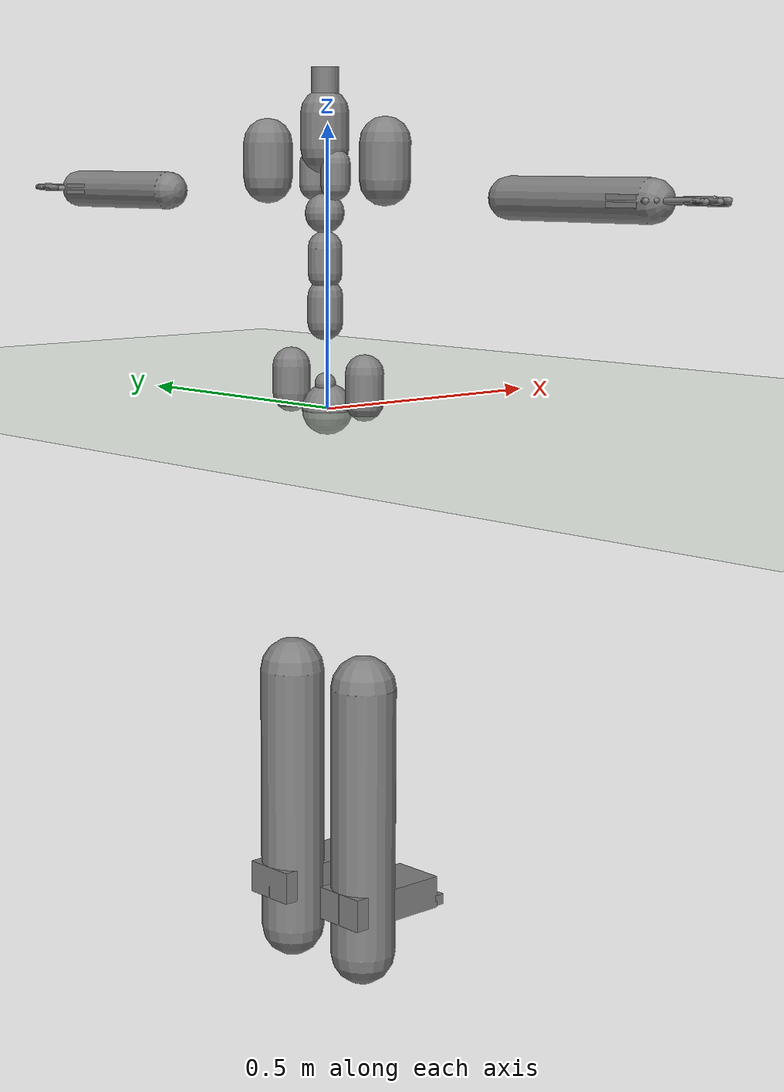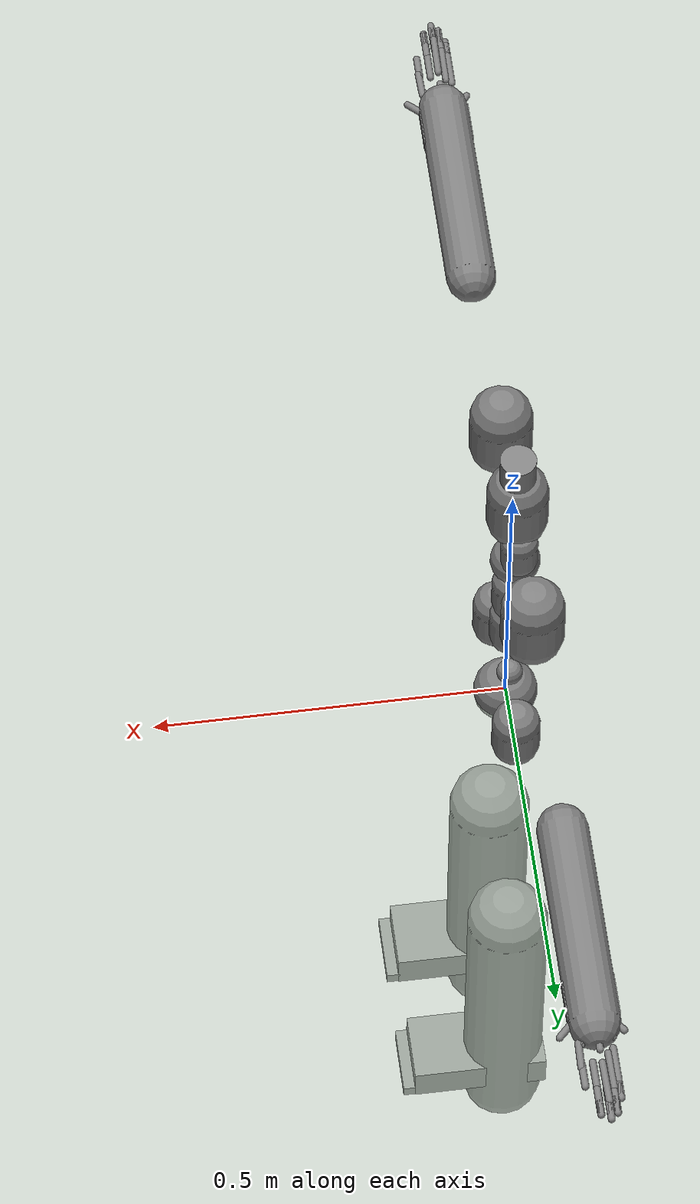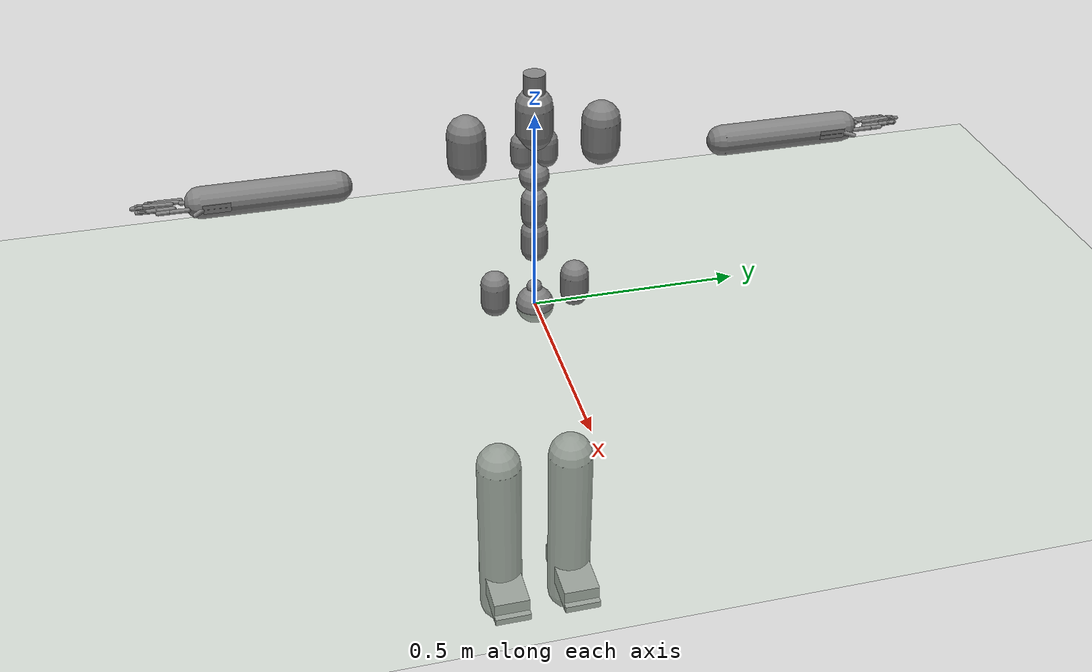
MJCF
<?xml version="1.0" ?>
<mujoco model="humanoid">
  <compiler coordinate="local"/>
  <statistic extent="2" center="0 0 1"/>
  <option timestep="0.00555"/>
  <default>
    <motor ctrlrange="-1 1" ctrllimited="true"/>
    <geom type="capsule" condim="1" friction="1.0 0.05 0.05" solimp=".9 .99 .003" solref=".015 1"/>
    <joint type="hinge" damping="0.1" stiffness="5" armature=".007" limited="true" solimplimit="0 .99 .01"/>
    <site size=".04" group="3"/>
  </default>
  <asset>
    <texture type="skybox" builtin="gradient" rgb1=".4 .5 .6" rgb2="0 0 0" width="100" height="100"/>
    <texture builtin="flat" height="1278" mark="cross" markrgb="1 1 1" name="texgeom" random="0.01" rgb1="0.8 0.6 0.4" rgb2="0.8 0.6 0.4" type="cube" width="127"/>
    <texture builtin="checker" height="100" name="texplane" rgb1="0 0 0" rgb2="0.8 0.8 0.8" type="2d" width="100"/>
    <material name="MatPlane" reflectance="0.5" shininess="1" specular="1" texrepeat="60 60" texture="texplane"/>
    <material name="geom" texture="texgeom" texuniform="true"/>
  </asset>
  <worldbody>
    <light cutoff="100" diffuse="1 1 1" dir="-0 0 -1.3" directional="true" exponent="1" pos="0 0 1.3" specular=".1 .1 .1"/>
    <geom conaffinity="1" condim="3" name="floor" pos="0 0 0" rgba="0.8 0.9 0.8 1" size="100 100 .2" type="plane" material="MatPlane"/>
    <body name="pHipOrigin" pos="0 0 0">
      <freejoint name="pHipOrigin"/>
      <geom type="sphere" contype="1" conaffinity="1" density="4629.6296296296305" size="0.04579" pos="0.0000 0.0000 -0.0000"/>
      <body name="jL5S1" pos="-0.00516028 0 0.04644237">
        <geom type="sphere" contype="1" conaffinity="1" density="1000" size="0.01869" pos="0 0 0"/>
        <joint name="jL5S1_x" type="hinge" pos="0 0 0" axis="1 0 0" stiffness="500" damping="500" armature="0.02" range="-180.0000 180.0000"/>
        <joint name="jL5S1_y" type="hinge" pos="0 0 0" axis="0 1 0" stiffness="500" damping="500" armature="0.02" range="-180.0000 180.0000"/>
        <joint name="jL5S1_z" type="hinge" pos="0 0 0" axis="0 0 1" stiffness="500" damping="500" armature="0.02" range="-180.0000 180.0000"/>
        <body name="jL4L3" pos="0 0 0.09026365">
          <geom type="capsule" contype="1" conaffinity="1" density="1000" fromto="0 0 0.01805 0 0 0.06318" size="0.03159"/>
          <joint name="jL4L3_x" type="hinge" pos="0 0 0" axis="1 0 0" stiffness="500" damping="500" armature="0.02" range="-180.0000 180.0000"/>
          <joint name="jL4L3_y" type="hinge" pos="0 0 0" axis="0 1 0" stiffness="500" damping="500" armature="0.02" range="-180.0000 180.0000"/>
          <joint name="jL4L3_z" type="hinge" pos="0 0 0" axis="0 0 1" stiffness="500" damping="500" armature="0.02" range="-180.0000 180.0000"/>
          <body name="jL1T12" pos="-0.00067339 0 0.08728387">
            <geom type="capsule" contype="1" conaffinity="1" density="1000" fromto="0 0 0.01746 0 0 0.06110" size="0.03055"/>
            <joint name="jL1T12_x" type="hinge" pos="0 0 0" axis="1 0 0" stiffness="500" damping="500" armature="0.02" range="-180.0000 180.0000"/>
            <joint name="jL1T12_y" type="hinge" pos="0 0 0" axis="0 1 0" stiffness="500" damping="500" armature="0.02" range="-180.0000 180.0000"/>
            <joint name="jL1T12_z" type="hinge" pos="0 0 0" axis="0 0 1" stiffness="500" damping="500" armature="0.02" range="-180.0000 180.0000"/>
            <body name="jT9T8" pos="-0.00067503 0 0.08732632">
              <geom type="sphere" contype="1" conaffinity="1" density="1000" size="0.03493" pos="0.000 0.0000 0.034932"/>
              <joint name="jT9T8_x" type="hinge" pos="0 0 0" axis="1 0 0" stiffness="500" damping="500" armature="0.02" range="-180.0000 180.0000"/>
              <joint name="jT9T8_y" type="hinge" pos="0 0 0" axis="0 1 0" stiffness="500" damping="500" armature="0.02" range="-180.0000 180.0000"/>
              <joint name="jT9T8_z" type="hinge" pos="0 0 0" axis="0 0 1" stiffness="500" damping="500" armature="0.02" range="-180.0000 180.0000"/>
              <body name="jT1C7" pos="0 0 0.12202999">
                <geom type="capsule" contype="1" conaffinity="1" density="1000" fromto="0 0 0.02441 0 0 0.08542" size="0.04271"/>
                <joint name="jT1C7_x" type="hinge" pos="0 0 0" axis="1 0 0" stiffness="500" damping="500" armature="0.02" range="-180.0000 180.0000"/>
                <joint name="jT1C7_y" type="hinge" pos="0 0 0" axis="0 1 0" stiffness="500" damping="500" armature="0.02" range="-180.0000 180.0000"/>
                <joint name="jT1C7_z" type="hinge" pos="0 0 0" axis="0 0 1" stiffness="500" damping="500" armature="0.02" range="-180.0000 180.0000"/>
                <body name="jC1Head" pos="0.00096976 0 0.08219932">
                  <geom type="cylinder" contype="1" conaffinity="1" density="1000" fromto="0 0 0 0 0 0.08221" size="0.02466"/>
                  <joint name="jC1Head_x" type="hinge" pos="0 0 0" axis="1 0 0" stiffness="500" damping="500" armature="0.02" range="-180.0000 180.0000"/>
                  <joint name="jC1Head_y" type="hinge" pos="0 0 0" axis="0 1 0" stiffness="500" damping="500" armature="0.02" range="-180.0000 180.0000"/>
                  <joint name="jC1Head_z" type="hinge" pos="0 0 0" axis="0 0 1" stiffness="500" damping="500" armature="0.02" range="-180.0000 180.0000"/>
                </body>
              </body>
              <body name="jRightT4Shoulder" pos="0 -0.02818148 0.06871263">
                <geom type="capsule" contype="1" conaffinity="1" density="1000" fromto="0 0 0.01485 0 0 0.05199" size="0.02599"/>
                <joint name="jRightT4Shoulder_x" type="hinge" pos="0 0 0" axis="1 0 0" stiffness="500" damping="500" armature="0.02" range="-180.0000 180.0000"/>
                <joint name="jRightT4Shoulder_y" type="hinge" pos="0 0 0" axis="0 1 0" stiffness="500" damping="500" armature="0.02" range="-180.0000 180.0000"/>
                <joint name="jRightT4Shoulder_z" type="hinge" pos="0 0 0" axis="0 0 1" stiffness="500" damping="500" armature="0.02" range="-180.0000 180.0000"/>
                <body name="jRightShoulder" pos="0 -0.12632993 0">
                  <geom type="capsule" contype="1" conaffinity="1" density="1000" fromto="0 0 0.02527 0 0 0.08843" size="0.04422"/>
                  <joint name="jRightShoulder_x" type="hinge" pos="0 0 0" axis="1 0 0" stiffness="500" damping="500" armature="0.02" range="-180.0000 180.0000"/>
                  <joint name="jRightShoulder_y" type="hinge" pos="0 0 0" axis="0 1 0" stiffness="500" damping="500" armature="0.02" range="-180.0000 180.0000"/>
                  <joint name="jRightShoulder_z" type="hinge" pos="0 0 0" axis="0 0 1" stiffness="500" damping="500" armature="0.02" range="-180.0000 180.0000"/>
                  <body name="jRightElbow" pos="0 -0.29293466 0">
                    <geom type="capsule" contype="1" conaffinity="1" density="1000" fromto="0 0 0 0.00000000 -0.29293466 0.00000000" size="0.03515"/>
                    <joint name="jRightElbow_x" type="hinge" pos="0 0 0" axis="1 0 0" stiffness="500" damping="500" armature="0.02" range="-180.0000 180.0000"/>
                    <joint name="jRightElbow_y" type="hinge" pos="0 0 0" axis="0 1 0" stiffness="500" damping="500" armature="0.02" range="-180.0000 180.0000"/>
                    <joint name="jRightElbow_z" type="hinge" pos="0 0 0" axis="0 0 1" stiffness="500" damping="500" armature="0.02" range="-180.0000 180.0000"/>
                    <body name="jRightWrist" pos="0.00010481 -0.26040477 0">
                      <geom density="1000" type="box" pos="0 0 0" size="0.035 0.03 0.01" quat="1.0000 0.0000 0.0000 0.0000"/>
                      <joint name="jRightWrist_x" type="hinge" pos="0 0 0" axis="1 0 0" stiffness="500" damping="500" armature="0.02" range="-180.0000 180.0000"/>
                      <joint name="jRightWrist_y" type="hinge" pos="0 0 0" axis="0 1 0" stiffness="500" damping="500" armature="0.02" range="-180.0000 180.0000"/>
                      <joint name="jRightWrist_z" type="hinge" pos="0 0 0" axis="0 0 1" stiffness="500" damping="500" armature="0.02" range="-180.0000 180.0000"/>
                      <body name="jRightFirstCMC" pos="0.02457672 -0.02355817 -0.00111298">
                        <geom type="capsule" contype="1" conaffinity="1" density="1000" fromto="0 0 0 0.02457672 -0.02355817 -0.00111298" size="0.005"/>
                        <joint name="jRightFirstCMC_x" type="hinge" pos="0 0 0" axis="1 0 0" stiffness="500" damping="500" armature="0.02" range="-180.0000 180.0000"/>
                        <joint name="jRightFirstCMC_y" type="hinge" pos="0 0 0" axis="0 1 0" stiffness="500" damping="500" armature="0.02" range="-180.0000 180.0000"/>
                        <joint name="jRightFirstCMC_z" type="hinge" pos="0 0 0" axis="0 0 1" stiffness="500" damping="500" armature="0.02" range="-180.0000 180.0000"/>
                        <body name="jRightFirstMCP" pos="0.00128810 -0.03634932 0.00076806">
                          <geom type="capsule" contype="1" conaffinity="1" density="1000" fromto="0 0 0 0.00128810 -0.03634932 0.00076806" size="0.005"/>
                          <joint name="jRightFirstMCP_x" type="hinge" pos="0 0 0" axis="1 0 0" stiffness="500" damping="500" armature="0.02" range="-180.0000 180.0000"/>
                          <joint name="jRightFirstMCP_y" type="hinge" pos="0 0 0" axis="0 1 0" stiffness="500" damping="500" armature="0.02" range="-180.0000 180.0000"/>
                          <joint name="jRightFirstMCP_z" type="hinge" pos="0 0 0" axis="0 0 1" stiffness="500" damping="500" armature="0.02" range="-180.0000 180.0000"/>
                          <body name="jRightIP" pos="0 -0.03195991 0">
                            <geom type="capsule" contype="1" conaffinity="1" density="1000" fromto="0 0 0 0.00000000 -0.03195991 0.00000000" size="0.005"/>
                            <joint name="jRightIP_x" type="hinge" pos="0 0 0" axis="1 0 0" stiffness="500" damping="500" armature="0.02" range="-180.0000 180.0000"/>
                            <joint name="jRightIP_y" type="hinge" pos="0 0 0" axis="0 1 0" stiffness="500" damping="500" armature="0.02" range="-180.0000 180.0000"/>
                            <joint name="jRightIP_z" type="hinge" pos="0 0 0" axis="0 0 1" stiffness="500" damping="500" armature="0.02" range="-180.0000 180.0000"/>
                          </body>
                        </body>
                      </body>
                      <body name="jRightSecondCMC" pos="0.01080197 -0.03155993 -0.00055048">
                        <geom type="capsule" contype="1" conaffinity="1" density="1000" fromto="0 0 0 0.01080197 -0.03155993 -0.00055048" size="0.005"/>
                        <joint name="jRightSecondCMC_x" type="hinge" pos="0 0 0" axis="1 0 0" stiffness="500" damping="500" armature="0.02" range="-180.0000 180.0000"/>
                        <joint name="jRightSecondCMC_y" type="hinge" pos="0 0 0" axis="0 1 0" stiffness="500" damping="500" armature="0.02" range="-180.0000 180.0000"/>
                        <joint name="jRightSecondCMC_z" type="hinge" pos="0 0 0" axis="0 0 1" stiffness="500" damping="500" armature="0.02" range="-180.0000 180.0000"/>
                        <body name="jRightSecondMCP" pos="-0.00036524 -0.05825237 -0.00060427">
                          <geom type="capsule" contype="1" conaffinity="1" density="1000" fromto="0 0 0 -0.00036524 -0.05825237 -0.00060427" size="0.005"/>
                          <joint name="jRightSecondMCP_x" type="hinge" pos="0 0 0" axis="1 0 0" stiffness="500" damping="500" armature="0.02" range="-180.0000 180.0000"/>
                          <joint name="jRightSecondMCP_y" type="hinge" pos="0 0 0" axis="0 1 0" stiffness="500" damping="500" armature="0.02" range="-180.0000 180.0000"/>
                          <joint name="jRightSecondMCP_z" type="hinge" pos="0 0 0" axis="0 0 1" stiffness="500" damping="500" armature="0.02" range="-180.0000 180.0000"/>
                          <body name="jRightSecondPIP" pos="0 -0.03853309 0">
                            <geom type="capsule" contype="1" conaffinity="1" density="1000" fromto="0 0 0 0.00000000 -0.03853309 0.00000000" size="0.005"/>
                            <joint name="jRightSecondPIP_x" type="hinge" pos="0 0 0" axis="1 0 0" stiffness="500" damping="500" armature="0.02" range="-180.0000 180.0000"/>
                            <joint name="jRightSecondPIP_y" type="hinge" pos="0 0 0" axis="0 1 0" stiffness="500" damping="500" armature="0.02" range="-180.0000 180.0000"/>
                            <joint name="jRightSecondPIP_z" type="hinge" pos="0 0 0" axis="0 0 1" stiffness="500" damping="500" armature="0.02" range="-180.0000 180.0000"/>
                            <body name="jRightSecondDIP" pos="0 -0.01883598 0">
                              <geom type="capsule" contype="1" conaffinity="1" density="1000" fromto="0 0 0 0.00000000 -0.01883598 0.00000000" size="0.005"/>
                              <joint name="jRightSecondDIP_x" type="hinge" pos="0 0 0" axis="1 0 0" stiffness="500" damping="500" armature="0.02" range="-180.0000 180.0000"/>
                              <joint name="jRightSecondDIP_y" type="hinge" pos="0 0 0" axis="0 1 0" stiffness="500" damping="500" armature="0.02" range="-180.0000 180.0000"/>
                              <joint name="jRightSecondDIP_z" type="hinge" pos="0 0 0" axis="0 0 1" stiffness="500" damping="500" armature="0.02" range="-180.0000 180.0000"/>
                            </body>
                          </body>
                        </body>
                      </body>
                      <body name="jRightThirdCMC" pos="-0.00068696 -0.03714905 0.00156180">
                        <geom type="capsule" contype="1" conaffinity="1" density="1000" fromto="0 0 0 -0.00068696 -0.03714905 0.00156180" size="0.005"/>
                        <joint name="jRightThirdCMC_x" type="hinge" pos="0 0 0" axis="1 0 0" stiffness="500" damping="500" armature="0.02" range="-180.0000 180.0000"/>
                        <joint name="jRightThirdCMC_y" type="hinge" pos="0 0 0" axis="0 1 0" stiffness="500" damping="500" armature="0.02" range="-180.0000 180.0000"/>
                        <joint name="jRightThirdCMC_z" type="hinge" pos="0 0 0" axis="0 0 1" stiffness="500" damping="500" armature="0.02" range="-180.0000 180.0000"/>
                        <body name="jRightThirdMCP" pos="-0.00068819 -0.05701641 0.00155120">
                          <geom type="capsule" contype="1" conaffinity="1" density="1000" fromto="0 0 0 -0.00068819 -0.05701641 0.00155120" size="0.005"/>
                          <joint name="jRightThirdMCP_x" type="hinge" pos="0 0 0" axis="1 0 0" stiffness="500" damping="500" armature="0.02" range="-180.0000 180.0000"/>
                          <joint name="jRightThirdMCP_y" type="hinge" pos="0 0 0" axis="0 1 0" stiffness="500" damping="500" armature="0.02" range="-180.0000 180.0000"/>
                          <joint name="jRightThirdMCP_z" type="hinge" pos="0 0 0" axis="0 0 1" stiffness="500" damping="500" armature="0.02" range="-180.0000 180.0000"/>
                          <body name="jRightThirdPIP" pos="0 -0.03817655 0">
                            <geom type="capsule" contype="1" conaffinity="1" density="1000" fromto="0 0 0 0.00000000 -0.03817655 0.00000000" size="0.005"/>
                            <joint name="jRightThirdPIP_x" type="hinge" pos="0 0 0" axis="1 0 0" stiffness="500" damping="500" armature="0.02" range="-180.0000 180.0000"/>
                            <joint name="jRightThirdPIP_y" type="hinge" pos="0 0 0" axis="0 1 0" stiffness="500" damping="500" armature="0.02" range="-180.0000 180.0000"/>
                            <joint name="jRightThirdPIP_z" type="hinge" pos="0 0 0" axis="0 0 1" stiffness="500" damping="500" armature="0.02" range="-180.0000 180.0000"/>
                            <body name="jRightThirdDIP" pos="0 -0.02231841 0">
                              <geom type="capsule" contype="1" conaffinity="1" density="1000" fromto="0 0 0 0.00000000 -0.02231841 0.00000000" size="0.005"/>
                              <joint name="jRightThirdDIP_x" type="hinge" pos="0 0 0" axis="1 0 0" stiffness="500" damping="500" armature="0.02" range="-180.0000 180.0000"/>
                              <joint name="jRightThirdDIP_y" type="hinge" pos="0 0 0" axis="0 1 0" stiffness="500" damping="500" armature="0.02" range="-180.0000 180.0000"/>
                              <joint name="jRightThirdDIP_z" type="hinge" pos="0 0 0" axis="0 0 1" stiffness="500" damping="500" armature="0.02" range="-180.0000 180.0000"/>
                            </body>
                          </body>
                        </body>
                      </body>
                      <body name="jRightFourthCMC" pos="-0.01026374 -0.02858622 0.00067287">
                        <geom type="capsule" contype="1" conaffinity="1" density="1000" fromto="0 0 0 -0.01026374 -0.02858622 0.00067287" size="0.005"/>
                        <joint name="jRightFourthCMC_x" type="hinge" pos="0 0 0" axis="1 0 0" stiffness="500" damping="500" armature="0.02" range="-180.0000 180.0000"/>
                        <joint name="jRightFourthCMC_y" type="hinge" pos="0 0 0" axis="0 1 0" stiffness="500" damping="500" armature="0.02" range="-180.0000 180.0000"/>
                        <joint name="jRightFourthCMC_z" type="hinge" pos="0 0 0" axis="0 0 1" stiffness="500" damping="500" armature="0.02" range="-180.0000 180.0000"/>
                        <body name="jRightFourthMCP" pos="-0.00037777 -0.05177654 0.00081345">
                          <geom type="capsule" contype="1" conaffinity="1" density="1000" fromto="0 0 0 -0.00037777 -0.05177654 0.00081345" size="0.005"/>
                          <joint name="jRightFourthMCP_x" type="hinge" pos="0 0 0" axis="1 0 0" stiffness="500" damping="500" armature="0.02" range="-180.0000 180.0000"/>
                          <joint name="jRightFourthMCP_y" type="hinge" pos="0 0 0" axis="0 1 0" stiffness="500" damping="500" armature="0.02" range="-180.0000 180.0000"/>
                          <joint name="jRightFourthMCP_z" type="hinge" pos="0 0 0" axis="0 0 1" stiffness="500" damping="500" armature="0.02" range="-180.0000 180.0000"/>
                          <body name="jRightFourthPIP" pos="0 -0.04409844 0">
                            <geom type="capsule" contype="1" conaffinity="1" density="1000" fromto="0 0 0 0.00000000 -0.04409844 0.00000000" size="0.005"/>
                            <joint name="jRightFourthPIP_x" type="hinge" pos="0 0 0" axis="1 0 0" stiffness="500" damping="500" armature="0.02" range="-180.0000 180.0000"/>
                            <joint name="jRightFourthPIP_y" type="hinge" pos="0 0 0" axis="0 1 0" stiffness="500" damping="500" armature="0.02" range="-180.0000 180.0000"/>
                            <joint name="jRightFourthPIP_z" type="hinge" pos="0 0 0" axis="0 0 1" stiffness="500" damping="500" armature="0.02" range="-180.0000 180.0000"/>
                            <body name="jRightFourthDIP" pos="0 -0.02124257 0">
                              <geom type="capsule" contype="1" conaffinity="1" density="1000" fromto="0 0 0 0.00000000 -0.02124257 0.00000000" size="0.005"/>
                              <joint name="jRightFourthDIP_x" type="hinge" pos="0 0 0" axis="1 0 0" stiffness="500" damping="500" armature="0.02" range="-180.0000 180.0000"/>
                              <joint name="jRightFourthDIP_y" type="hinge" pos="0 0 0" axis="0 1 0" stiffness="500" damping="500" armature="0.02" range="-180.0000 180.0000"/>
                              <joint name="jRightFourthDIP_z" type="hinge" pos="0 0 0" axis="0 0 1" stiffness="500" damping="500" armature="0.02" range="-180.0000 180.0000"/>
                            </body>
                          </body>
                        </body>
                      </body>
                      <body name="jRightFifthCMC" pos="-0.01800626 -0.02508967 0.00049494">
                        <geom type="capsule" contype="1" conaffinity="1" density="1000" fromto="0 0 0 -0.01800626 -0.02508967 0.00049494" size="0.005"/>
                        <joint name="jRightFifthCMC_x" type="hinge" pos="0 0 0" axis="1 0 0" stiffness="500" damping="500" armature="0.02" range="-180.0000 180.0000"/>
                        <joint name="jRightFifthCMC_y" type="hinge" pos="0 0 0" axis="0 1 0" stiffness="500" damping="500" armature="0.02" range="-180.0000 180.0000"/>
                        <joint name="jRightFifthCMC_z" type="hinge" pos="0 0 0" axis="0 0 1" stiffness="500" damping="500" armature="0.02" range="-180.0000 180.0000"/>
                        <body name="jRightFifthMCP" pos="-0.00000722 -0.04890804 0.00067304">
                          <geom type="capsule" contype="1" conaffinity="1" density="1000" fromto="0 0 0 -0.00000722 -0.04890804 0.00067304" size="0.005"/>
                          <joint name="jRightFifthMCP_x" type="hinge" pos="0 0 0" axis="1 0 0" stiffness="500" damping="500" armature="0.02" range="-180.0000 180.0000"/>
                          <joint name="jRightFifthMCP_y" type="hinge" pos="0 0 0" axis="0 1 0" stiffness="500" damping="500" armature="0.02" range="-180.0000 180.0000"/>
                          <joint name="jRightFifthMCP_z" type="hinge" pos="0 0 0" axis="0 0 1" stiffness="500" damping="500" armature="0.02" range="-180.0000 180.0000"/>
                          <body name="jRightFifthPIP" pos="0 -0.03690721 0">
                            <geom type="capsule" contype="1" conaffinity="1" density="1000" fromto="0 0 0 0.00000000 -0.03690721 0.00000000" size="0.005"/>
                            <joint name="jRightFifthPIP_x" type="hinge" pos="0 0 0" axis="1 0 0" stiffness="500" damping="500" armature="0.02" range="-180.0000 180.0000"/>
                            <joint name="jRightFifthPIP_y" type="hinge" pos="0 0 0" axis="0 1 0" stiffness="500" damping="500" armature="0.02" range="-180.0000 180.0000"/>
                            <joint name="jRightFifthPIP_z" type="hinge" pos="0 0 0" axis="0 0 1" stiffness="500" damping="500" armature="0.02" range="-180.0000 180.0000"/>
                            <body name="jRightFifthDIP" pos="0 -0.01625599 0">
                              <geom type="capsule" contype="1" conaffinity="1" density="1000" fromto="0 0 0 0.00000000 -0.01625599 0.00000000" size="0.005"/>
                              <joint name="jRightFifthDIP_x" type="hinge" pos="0 0 0" axis="1 0 0" stiffness="500" damping="500" armature="0.02" range="-180.0000 180.0000"/>
                              <joint name="jRightFifthDIP_y" type="hinge" pos="0 0 0" axis="0 1 0" stiffness="500" damping="500" armature="0.02" range="-180.0000 180.0000"/>
                              <joint name="jRightFifthDIP_z" type="hinge" pos="0 0 0" axis="0 0 1" stiffness="500" damping="500" armature="0.02" range="-180.0000 180.0000"/>
                            </body>
                          </body>
                        </body>
                      </body>
                    </body>
                  </body>
                </body>
              </body>
              <body name="jLeftT4Shoulder" pos="0 0.02811054 0.06853966">
                <geom type="capsule" contype="1" conaffinity="1" density="1000" fromto="0 0 0.01482 0 0 0.05186" size="0.02593"/>
                <joint name="jLeftT4Shoulder_x" type="hinge" pos="0 0 0" axis="1 0 0" stiffness="500" damping="500" armature="0.02" range="-180.0000 180.0000"/>
                <joint name="jLeftT4Shoulder_y" type="hinge" pos="0 0 0" axis="0 1 0" stiffness="500" damping="500" armature="0.02" range="-180.0000 180.0000"/>
                <joint name="jLeftT4Shoulder_z" type="hinge" pos="0 0 0" axis="0 0 1" stiffness="500" damping="500" armature="0.02" range="-180.0000 180.0000"/>
                <body name="jLeftShoulder" pos="0 0.12628338 0">
                  <geom type="capsule" contype="1" conaffinity="1" density="1000" fromto="0 0 0.02526 0 0 0.08840" size="0.04420"/>
                  <joint name="jLeftShoulder_x" type="hinge" pos="0 0 0" axis="1 0 0" stiffness="500" damping="500" armature="0.02" range="-180.0000 180.0000"/>
                  <joint name="jLeftShoulder_y" type="hinge" pos="0 0 0" axis="0 1 0" stiffness="500" damping="500" armature="0.02" range="-180.0000 180.0000"/>
                  <joint name="jLeftShoulder_z" type="hinge" pos="0 0 0" axis="0 0 1" stiffness="500" damping="500" armature="0.02" range="-180.0000 180.0000"/>
                  <body name="jLeftElbow" pos="0 0.29351538 0">
                    <geom type="capsule" contype="1" conaffinity="1" density="1000" fromto="0 0 0 0.00000000 0.29351538 0.00000000" size="0.03522"/>
                    <joint name="jLeftElbow_x" type="hinge" pos="0 0 0" axis="1 0 0" stiffness="500" damping="500" armature="0.02" range="-180.0000 180.0000"/>
                    <joint name="jLeftElbow_y" type="hinge" pos="0 0 0" axis="0 1 0" stiffness="500" damping="500" armature="0.02" range="-180.0000 180.0000"/>
                    <joint name="jLeftElbow_z" type="hinge" pos="0 0 0" axis="0 0 1" stiffness="500" damping="500" armature="0.02" range="-180.0000 180.0000"/>
                    <body name="jLeftWrist" pos="0.00010456 0.25978503 0">
                      <geom density="1000" type="box" pos="0 0 0" size="0.035 0.03 0.01" quat="1.0000 0.0000 0.0000 0.0000"/>
                      <joint name="jLeftWrist_x" type="hinge" pos="0 0 0" axis="1 0 0" stiffness="500" damping="500" armature="0.02" range="-180.0000 180.0000"/>
                      <joint name="jLeftWrist_y" type="hinge" pos="0 0 0" axis="0 1 0" stiffness="500" damping="500" armature="0.02" range="-180.0000 180.0000"/>
                      <joint name="jLeftWrist_z" type="hinge" pos="0 0 0" axis="0 0 1" stiffness="500" damping="500" armature="0.02" range="-180.0000 180.0000"/>
                      <body name="jLeftFirstCMC" pos="0.02405482 0.02411163 -0.00107661">
                        <geom type="capsule" contype="1" conaffinity="1" density="1000" fromto="0 0 0 0.02405482 0.02411163 -0.00107661" size="0.005"/>
                        <joint name="jLeftFirstCMC_x" type="hinge" pos="0 0 0" axis="1 0 0" stiffness="500" damping="500" armature="0.02" range="-180.0000 180.0000"/>
                        <joint name="jLeftFirstCMC_y" type="hinge" pos="0 0 0" axis="0 1 0" stiffness="500" damping="500" armature="0.02" range="-180.0000 180.0000"/>
                        <joint name="jLeftFirstCMC_z" type="hinge" pos="0 0 0" axis="0 0 1" stiffness="500" damping="500" armature="0.02" range="-180.0000 180.0000"/>
                        <body name="jLeftFirstMCP" pos="0.00127569 0.03634850 0.00074850">
                          <geom type="capsule" contype="1" conaffinity="1" density="1000" fromto="0 0 0 0.00127569 0.03634850 0.00074850" size="0.005"/>
                          <joint name="jLeftFirstMCP_x" type="hinge" pos="0 0 0" axis="1 0 0" stiffness="500" damping="500" armature="0.02" range="-180.0000 180.0000"/>
                          <joint name="jLeftFirstMCP_y" type="hinge" pos="0 0 0" axis="0 1 0" stiffness="500" damping="500" armature="0.02" range="-180.0000 180.0000"/>
                          <joint name="jLeftFirstMCP_z" type="hinge" pos="0 0 0" axis="0 0 1" stiffness="500" damping="500" armature="0.02" range="-180.0000 180.0000"/>
                          <body name="jLeftIP" pos="0 0.03195991 0">
                            <geom type="capsule" contype="1" conaffinity="1" density="1000" fromto="0 0 0 0.00000000 0.03195991 0.00000000" size="0.005"/>
                            <joint name="jLeftIP_x" type="hinge" pos="0 0 0" axis="1 0 0" stiffness="500" damping="500" armature="0.02" range="-180.0000 180.0000"/>
                            <joint name="jLeftIP_y" type="hinge" pos="0 0 0" axis="0 1 0" stiffness="500" damping="500" armature="0.02" range="-180.0000 180.0000"/>
                            <joint name="jLeftIP_z" type="hinge" pos="0 0 0" axis="0 0 1" stiffness="500" damping="500" armature="0.02" range="-180.0000 180.0000"/>
                          </body>
                        </body>
                      </body>
                      <body name="jLeftSecondCMC" pos="0.01092639 0.03150186 -0.00055503">
                        <geom type="capsule" contype="1" conaffinity="1" density="1000" fromto="0 0 0 0.01092639 0.03150186 -0.00055503" size="0.005"/>
                        <joint name="jLeftSecondCMC_x" type="hinge" pos="0 0 0" axis="1 0 0" stiffness="500" damping="500" armature="0.02" range="-180.0000 180.0000"/>
                        <joint name="jLeftSecondCMC_y" type="hinge" pos="0 0 0" axis="0 1 0" stiffness="500" damping="500" armature="0.02" range="-180.0000 180.0000"/>
                        <joint name="jLeftSecondCMC_z" type="hinge" pos="0 0 0" axis="0 0 1" stiffness="500" damping="500" armature="0.02" range="-180.0000 180.0000"/>
                        <body name="jLeftSecondMCP" pos="-0.00031846 0.05825356 -0.00061173">
                          <geom type="capsule" contype="1" conaffinity="1" density="1000" fromto="0 0 0 -0.00031846 0.05825356 -0.00061173" size="0.005"/>
                          <joint name="jLeftSecondMCP_x" type="hinge" pos="0 0 0" axis="1 0 0" stiffness="500" damping="500" armature="0.02" range="-180.0000 180.0000"/>
                          <joint name="jLeftSecondMCP_y" type="hinge" pos="0 0 0" axis="0 1 0" stiffness="500" damping="500" armature="0.02" range="-180.0000 180.0000"/>
                          <joint name="jLeftSecondMCP_z" type="hinge" pos="0 0 0" axis="0 0 1" stiffness="500" damping="500" armature="0.02" range="-180.0000 180.0000"/>
                          <body name="jLeftSecondPIP" pos="0 0.03853309 0">
                            <geom type="capsule" contype="1" conaffinity="1" density="1000" fromto="0 0 0 0.00000000 0.03853309 0.00000000" size="0.005"/>
                            <joint name="jLeftSecondPIP_x" type="hinge" pos="0 0 0" axis="1 0 0" stiffness="500" damping="500" armature="0.02" range="-180.0000 180.0000"/>
                            <joint name="jLeftSecondPIP_y" type="hinge" pos="0 0 0" axis="0 1 0" stiffness="500" damping="500" armature="0.02" range="-180.0000 180.0000"/>
                            <joint name="jLeftSecondPIP_z" type="hinge" pos="0 0 0" axis="0 0 1" stiffness="500" damping="500" armature="0.02" range="-180.0000 180.0000"/>
                            <body name="jLeftSecondDIP" pos="0 0.01883598 0">
                              <geom type="capsule" contype="1" conaffinity="1" density="1000" fromto="0 0 0 0.00000000 0.01883598 0.00000000" size="0.005"/>
                              <joint name="jLeftSecondDIP_x" type="hinge" pos="0 0 0" axis="1 0 0" stiffness="500" damping="500" armature="0.02" range="-180.0000 180.0000"/>
                              <joint name="jLeftSecondDIP_y" type="hinge" pos="0 0 0" axis="0 1 0" stiffness="500" damping="500" armature="0.02" range="-180.0000 180.0000"/>
                              <joint name="jLeftSecondDIP_z" type="hinge" pos="0 0 0" axis="0 0 1" stiffness="500" damping="500" armature="0.02" range="-180.0000 180.0000"/>
                            </body>
                          </body>
                        </body>
                      </body>
                      <body name="jLeftThirdCMC" pos="-0.00069099 0.03715239 0.00150974">
                        <geom type="capsule" contype="1" conaffinity="1" density="1000" fromto="0 0 0 -0.00069099 0.03715239 0.00150974" size="0.005"/>
                        <joint name="jLeftThirdCMC_x" type="hinge" pos="0 0 0" axis="1 0 0" stiffness="500" damping="500" armature="0.02" range="-180.0000 180.0000"/>
                        <joint name="jLeftThirdCMC_y" type="hinge" pos="0 0 0" axis="0 1 0" stiffness="500" damping="500" armature="0.02" range="-180.0000 180.0000"/>
                        <joint name="jLeftThirdCMC_z" type="hinge" pos="0 0 0" axis="0 0 1" stiffness="500" damping="500" armature="0.02" range="-180.0000 180.0000"/>
                        <body name="jLeftThirdMCP" pos="-0.00069374 0.05701751 0.00152001">
                          <geom type="capsule" contype="1" conaffinity="1" density="1000" fromto="0 0 0 -0.00069374 0.05701751 0.00152001" size="0.005"/>
                          <joint name="jLeftThirdMCP_x" type="hinge" pos="0 0 0" axis="1 0 0" stiffness="500" damping="500" armature="0.02" range="-180.0000 180.0000"/>
                          <joint name="jLeftThirdMCP_y" type="hinge" pos="0 0 0" axis="0 1 0" stiffness="500" damping="500" armature="0.02" range="-180.0000 180.0000"/>
                          <joint name="jLeftThirdMCP_z" type="hinge" pos="0 0 0" axis="0 0 1" stiffness="500" damping="500" armature="0.02" range="-180.0000 180.0000"/>
                          <body name="jLeftThirdPIP" pos="0 0.03817655 0">
                            <geom type="capsule" contype="1" conaffinity="1" density="1000" fromto="0 0 0 0.00000000 0.03817655 0.00000000" size="0.005"/>
                            <joint name="jLeftThirdPIP_x" type="hinge" pos="0 0 0" axis="1 0 0" stiffness="500" damping="500" armature="0.02" range="-180.0000 180.0000"/>
                            <joint name="jLeftThirdPIP_y" type="hinge" pos="0 0 0" axis="0 1 0" stiffness="500" damping="500" armature="0.02" range="-180.0000 180.0000"/>
                            <joint name="jLeftThirdPIP_z" type="hinge" pos="0 0 0" axis="0 0 1" stiffness="500" damping="500" armature="0.02" range="-180.0000 180.0000"/>
                            <body name="jLeftThirdDIP" pos="0 0.02231841 0">
                              <geom type="capsule" contype="1" conaffinity="1" density="1000" fromto="0 0 0 0.00000000 0.02231841 0.00000000" size="0.005"/>
                              <joint name="jLeftThirdDIP_x" type="hinge" pos="0 0 0" axis="1 0 0" stiffness="500" damping="500" armature="0.02" range="-180.0000 180.0000"/>
                              <joint name="jLeftThirdDIP_y" type="hinge" pos="0 0 0" axis="0 1 0" stiffness="500" damping="500" armature="0.02" range="-180.0000 180.0000"/>
                              <joint name="jLeftThirdDIP_z" type="hinge" pos="0 0 0" axis="0 0 1" stiffness="500" damping="500" armature="0.02" range="-180.0000 180.0000"/>
                            </body>
                          </body>
                        </body>
                      </body>
                      <body name="jLeftFourthCMC" pos="-0.01064035 0.02844000 0.00071829">
                        <geom type="capsule" contype="1" conaffinity="1" density="1000" fromto="0 0 0 -0.01064035 0.02844000 0.00071829" size="0.005"/>
                        <joint name="jLeftFourthCMC_x" type="hinge" pos="0 0 0" axis="1 0 0" stiffness="500" damping="500" armature="0.02" range="-180.0000 180.0000"/>
                        <joint name="jLeftFourthCMC_y" type="hinge" pos="0 0 0" axis="0 1 0" stiffness="500" damping="500" armature="0.02" range="-180.0000 180.0000"/>
                        <joint name="jLeftFourthCMC_z" type="hinge" pos="0 0 0" axis="0 0 1" stiffness="500" damping="500" armature="0.02" range="-180.0000 180.0000"/>
                        <body name="jLeftFourthMCP" pos="-0.00040625 0.05177357 0.00086032">
                          <geom type="capsule" contype="1" conaffinity="1" density="1000" fromto="0 0 0 -0.00040625 0.05177357 0.00086032" size="0.005"/>
                          <joint name="jLeftFourthMCP_x" type="hinge" pos="0 0 0" axis="1 0 0" stiffness="500" damping="500" armature="0.02" range="-180.0000 180.0000"/>
                          <joint name="jLeftFourthMCP_y" type="hinge" pos="0 0 0" axis="0 1 0" stiffness="500" damping="500" armature="0.02" range="-180.0000 180.0000"/>
                          <joint name="jLeftFourthMCP_z" type="hinge" pos="0 0 0" axis="0 0 1" stiffness="500" damping="500" armature="0.02" range="-180.0000 180.0000"/>
                          <body name="jLeftFourthPIP" pos="0 0.04409844 0">
                            <geom type="capsule" contype="1" conaffinity="1" density="1000" fromto="0 0 0 0.00000000 0.04409844 0.00000000" size="0.005"/>
                            <joint name="jLeftFourthPIP_x" type="hinge" pos="0 0 0" axis="1 0 0" stiffness="500" damping="500" armature="0.02" range="-180.0000 180.0000"/>
                            <joint name="jLeftFourthPIP_y" type="hinge" pos="0 0 0" axis="0 1 0" stiffness="500" damping="500" armature="0.02" range="-180.0000 180.0000"/>
                            <joint name="jLeftFourthPIP_z" type="hinge" pos="0 0 0" axis="0 0 1" stiffness="500" damping="500" armature="0.02" range="-180.0000 180.0000"/>
                            <body name="jLeftFourthDIP" pos="0 0.02124257 0">
                              <geom type="capsule" contype="1" conaffinity="1" density="1000" fromto="0 0 0 0.00000000 0.02124257 0.00000000" size="0.005"/>
                              <joint name="jLeftFourthDIP_x" type="hinge" pos="0 0 0" axis="1 0 0" stiffness="500" damping="500" armature="0.02" range="-180.0000 180.0000"/>
                              <joint name="jLeftFourthDIP_y" type="hinge" pos="0 0 0" axis="0 1 0" stiffness="500" damping="500" armature="0.02" range="-180.0000 180.0000"/>
                              <joint name="jLeftFourthDIP_z" type="hinge" pos="0 0 0" axis="0 0 1" stiffness="500" damping="500" armature="0.02" range="-180.0000 180.0000"/>
                            </body>
                          </body>
                        </body>
                      </body>
                      <body name="jLeftFifthCMC" pos="-0.01855174 0.02469302 0.00050289">
                        <geom type="capsule" contype="1" conaffinity="1" density="1000" fromto="0 0 0 -0.01855174 0.02469302 0.00050289" size="0.005"/>
                        <joint name="jLeftFifthCMC_x" type="hinge" pos="0 0 0" axis="1 0 0" stiffness="500" damping="500" armature="0.02" range="-180.0000 180.0000"/>
                        <joint name="jLeftFifthCMC_y" type="hinge" pos="0 0 0" axis="0 1 0" stiffness="500" damping="500" armature="0.02" range="-180.0000 180.0000"/>
                        <joint name="jLeftFifthCMC_z" type="hinge" pos="0 0 0" axis="0 0 1" stiffness="500" damping="500" armature="0.02" range="-180.0000 180.0000"/>
                        <body name="jLeftFifthMCP" pos="-0.00001387 0.04890671 0.00070374">
                          <geom type="capsule" contype="1" conaffinity="1" density="1000" fromto="0 0 0 -0.00001387 0.04890671 0.00070374" size="0.005"/>
                          <joint name="jLeftFifthMCP_x" type="hinge" pos="0 0 0" axis="1 0 0" stiffness="500" damping="500" armature="0.02" range="-180.0000 180.0000"/>
                          <joint name="jLeftFifthMCP_y" type="hinge" pos="0 0 0" axis="0 1 0" stiffness="500" damping="500" armature="0.02" range="-180.0000 180.0000"/>
                          <joint name="jLeftFifthMCP_z" type="hinge" pos="0 0 0" axis="0 0 1" stiffness="500" damping="500" armature="0.02" range="-180.0000 180.0000"/>
                          <body name="jLeftFifthPIP" pos="0 0.03690721 0">
                            <geom type="capsule" contype="1" conaffinity="1" density="1000" fromto="0 0 0 0.00000000 0.03690721 0.00000000" size="0.005"/>
                            <joint name="jLeftFifthPIP_x" type="hinge" pos="0 0 0" axis="1 0 0" stiffness="500" damping="500" armature="0.02" range="-180.0000 180.0000"/>
                            <joint name="jLeftFifthPIP_y" type="hinge" pos="0 0 0" axis="0 1 0" stiffness="500" damping="500" armature="0.02" range="-180.0000 180.0000"/>
                            <joint name="jLeftFifthPIP_z" type="hinge" pos="0 0 0" axis="0 0 1" stiffness="500" damping="500" armature="0.02" range="-180.0000 180.0000"/>
                            <body name="jLeftFifthDIP" pos="0 0.01625599 0">
                              <geom type="capsule" contype="1" conaffinity="1" density="1000" fromto="0 0 0 0.00000000 0.01625599 0.00000000" size="0.005"/>
                              <joint name="jLeftFifthDIP_x" type="hinge" pos="0 0 0" axis="1 0 0" stiffness="500" damping="500" armature="0.02" range="-180.0000 180.0000"/>
                              <joint name="jLeftFifthDIP_y" type="hinge" pos="0 0 0" axis="0 1 0" stiffness="500" damping="500" armature="0.02" range="-180.0000 180.0000"/>
                              <joint name="jLeftFifthDIP_z" type="hinge" pos="0 0 0" axis="0 0 1" stiffness="500" damping="500" armature="0.02" range="-180.0000 180.0000"/>
                            </body>
                          </body>
                        </body>
                      </body>
                    </body>
                  </body>
                </body>
              </body>
            </body>
          </body>
        </body>
      </body>
      <body name="jRightHip" pos="-0.00016498 -0.09790504 0.00148519">
        <geom type="capsule" contype="1" conaffinity="1" density="1000" fromto="0 0 0.01958 0 0 0.06854" size="0.03427"/>
        <joint name="jRightHip_x" type="hinge" pos="0 0 0" axis="1 0 0" stiffness="500" damping="500" armature="0.02" range="-180.0000 180.0000"/>
        <joint name="jRightHip_y" type="hinge" pos="0 0 0" axis="0 1 0" stiffness="500" damping="500" armature="0.02" range="-180.0000 180.0000"/>
        <joint name="jRightHip_z" type="hinge" pos="0 0 0" axis="0 0 1" stiffness="500" damping="500" armature="0.02" range="-180.0000 180.0000"/>
        <body name="jRightKnee" pos="0.00005933 0 -0.49762743">
          <geom type="capsule" contype="1" conaffinity="1" density="1000" fromto="0 0 0 0.00005933 0.00000000 -0.49762743" size="0.05972"/>
          <joint name="jRightKnee_x" type="hinge" pos="0 0 0" axis="1 0 0" stiffness="500" damping="500" armature="0.02" range="-180.0000 180.0000"/>
          <joint name="jRightKnee_y" type="hinge" pos="0 0 0" axis="0 1 0" stiffness="500" damping="500" armature="0.02" range="-180.0000 180.0000"/>
          <joint name="jRightKnee_z" type="hinge" pos="0 0 0" axis="0 0 1" stiffness="500" damping="500" armature="0.02" range="-180.0000 180.0000"/>
          <body name="jRightAnkle" pos="0.00042163 0 -0.37340872">
            <geom density="1000" type="box" pos="0.04 0. -0.03" size="0.1 0.05 0.03" quat="1.0 0 0 0"/>
            <joint name="jRightAnkle_x" type="hinge" pos="0 0 0" axis="1 0 0" stiffness="500" damping="500" armature="0.02" range="-180.0000 180.0000"/>
            <joint name="jRightAnkle_y" type="hinge" pos="0 0 0" axis="0 1 0" stiffness="500" damping="500" armature="0.02" range="-180.0000 180.0000"/>
            <joint name="jRightAnkle_z" type="hinge" pos="0 0 0" axis="0 0 1" stiffness="500" damping="500" armature="0.02" range="-180.0000 180.0000"/>
            <body name="jRightBallFoot" pos="0.14725724 0 -0.06755589">
              <geom density="1000" type="box" pos="0 0 0.02" size="0.01 0.05 0.01" quat="1.0 0 0 0"/>
              <joint name="jRightBallFoot_x" type="hinge" pos="0 0 0" axis="1 0 0" stiffness="500" damping="500" armature="0.02" range="-180.0000 180.0000"/>
              <joint name="jRightBallFoot_y" type="hinge" pos="0 0 0" axis="0 1 0" stiffness="500" damping="500" armature="0.02" range="-180.0000 180.0000"/>
              <joint name="jRightBallFoot_z" type="hinge" pos="0 0 0" axis="0 0 1" stiffness="500" damping="500" armature="0.02" range="-180.0000 180.0000"/>
            </body>
          </body>
        </body>
      </body>
      <body name="jLeftHip" pos="-0.00016344 0.09826016 0.00147086">
        <geom type="capsule" contype="1" conaffinity="1" density="1000" fromto="0 0 0.01965 0 0 0.06879" size="0.03439"/>
        <joint name="jLeftHip_x" type="hinge" pos="0 0 0" axis="1 0 0" stiffness="500" damping="500" armature="0.02" range="-180.0000 180.0000"/>
        <joint name="jLeftHip_y" type="hinge" pos="0 0 0" axis="0 1 0" stiffness="500" damping="500" armature="0.02" range="-180.0000 180.0000"/>
        <joint name="jLeftHip_z" type="hinge" pos="0 0 0" axis="0 0 1" stiffness="500" damping="500" armature="0.02" range="-180.0000 180.0000"/>
        <body name="jLeftKnee" pos="0.00005934 0 -0.49771636">
          <geom type="capsule" contype="1" conaffinity="1" density="1000" fromto="0 0 0 0.00005934 0.00000000 -0.49771636" size="0.05973"/>
          <joint name="jLeftKnee_x" type="hinge" pos="0 0 0" axis="1 0 0" stiffness="500" damping="500" armature="0.02" range="-180.0000 180.0000"/>
          <joint name="jLeftKnee_y" type="hinge" pos="0 0 0" axis="0 1 0" stiffness="500" damping="500" armature="0.02" range="-180.0000 180.0000"/>
          <joint name="jLeftKnee_z" type="hinge" pos="0 0 0" axis="0 0 1" stiffness="500" damping="500" armature="0.02" range="-180.0000 180.0000"/>
          <body name="jLeftAnkle" pos="0.00042163 0 -0.37340872">
            <geom density="1000" type="box" pos="0.04 0. -0.03" size="0.1 0.05 0.03" quat="1.0 0 0 0"/>
            <joint name="jLeftAnkle_x" type="hinge" pos="0 0 0" axis="1 0 0" stiffness="500" damping="500" armature="0.02" range="-180.0000 180.0000"/>
            <joint name="jLeftAnkle_y" type="hinge" pos="0 0 0" axis="0 1 0" stiffness="500" damping="500" armature="0.02" range="-180.0000 180.0000"/>
            <joint name="jLeftAnkle_z" type="hinge" pos="0 0 0" axis="0 0 1" stiffness="500" damping="500" armature="0.02" range="-180.0000 180.0000"/>
            <body name="jLeftBallFoot" pos="0.14725723 0 -0.06755588">
              <geom density="1000" type="box" pos="0 0 0.02" size="0.01 0.05 0.01" quat="1.0 0 0 0"/>
              <joint name="jLeftBallFoot_x" type="hinge" pos="0 0 0" axis="1 0 0" stiffness="500" damping="500" armature="0.02" range="-180.0000 180.0000"/>
              <joint name="jLeftBallFoot_y" type="hinge" pos="0 0 0" axis="0 1 0" stiffness="500" damping="500" armature="0.02" range="-180.0000 180.0000"/>
              <joint name="jLeftBallFoot_z" type="hinge" pos="0 0 0" axis="0 0 1" stiffness="500" damping="500" armature="0.02" range="-180.0000 180.0000"/>
            </body>
          </body>
        </body>
      </body>
    </body>
  </worldbody>
  <actuator>
    <motor name="jL5S1_x" joint="jL5S1_x" gear="500"/>
    <motor name="jL5S1_y" joint="jL5S1_y" gear="500"/>
    <motor name="jL5S1_z" joint="jL5S1_z" gear="500"/>
    <motor name="jL4L3_x" joint="jL4L3_x" gear="500"/>
    <motor name="jL4L3_y" joint="jL4L3_y" gear="500"/>
    <motor name="jL4L3_z" joint="jL4L3_z" gear="500"/>
    <motor name="jL1T12_x" joint="jL1T12_x" gear="500"/>
    <motor name="jL1T12_y" joint="jL1T12_y" gear="500"/>
    <motor name="jL1T12_z" joint="jL1T12_z" gear="500"/>
    <motor name="jT9T8_x" joint="jT9T8_x" gear="500"/>
    <motor name="jT9T8_y" joint="jT9T8_y" gear="500"/>
    <motor name="jT9T8_z" joint="jT9T8_z" gear="500"/>
    <motor name="jT1C7_x" joint="jT1C7_x" gear="500"/>
    <motor name="jT1C7_y" joint="jT1C7_y" gear="500"/>
    <motor name="jT1C7_z" joint="jT1C7_z" gear="500"/>
    <motor name="jC1Head_x" joint="jC1Head_x" gear="500"/>
    <motor name="jC1Head_y" joint="jC1Head_y" gear="500"/>
    <motor name="jC1Head_z" joint="jC1Head_z" gear="500"/>
    <motor name="jRightT4Shoulder_x" joint="jRightT4Shoulder_x" gear="500"/>
    <motor name="jRightT4Shoulder_y" joint="jRightT4Shoulder_y" gear="500"/>
    <motor name="jRightT4Shoulder_z" joint="jRightT4Shoulder_z" gear="500"/>
    <motor name="jRightShoulder_x" joint="jRightShoulder_x" gear="500"/>
    <motor name="jRightShoulder_y" joint="jRightShoulder_y" gear="500"/>
    <motor name="jRightShoulder_z" joint="jRightShoulder_z" gear="500"/>
    <motor name="jRightElbow_x" joint="jRightElbow_x" gear="500"/>
    <motor name="jRightElbow_y" joint="jRightElbow_y" gear="500"/>
    <motor name="jRightElbow_z" joint="jRightElbow_z" gear="500"/>
    <motor name="jRightWrist_x" joint="jRightWrist_x" gear="500"/>
    <motor name="jRightWrist_y" joint="jRightWrist_y" gear="500"/>
    <motor name="jRightWrist_z" joint="jRightWrist_z" gear="500"/>
    <motor name="jLeftT4Shoulder_x" joint="jLeftT4Shoulder_x" gear="500"/>
    <motor name="jLeftT4Shoulder_y" joint="jLeftT4Shoulder_y" gear="500"/>
    <motor name="jLeftT4Shoulder_z" joint="jLeftT4Shoulder_z" gear="500"/>
    <motor name="jLeftShoulder_x" joint="jLeftShoulder_x" gear="500"/>
    <motor name="jLeftShoulder_y" joint="jLeftShoulder_y" gear="500"/>
    <motor name="jLeftShoulder_z" joint="jLeftShoulder_z" gear="500"/>
    <motor name="jLeftElbow_x" joint="jLeftElbow_x" gear="500"/>
    <motor name="jLeftElbow_y" joint="jLeftElbow_y" gear="500"/>
    <motor name="jLeftElbow_z" joint="jLeftElbow_z" gear="500"/>
    <motor name="jLeftWrist_x" joint="jLeftWrist_x" gear="500"/>
    <motor name="jLeftWrist_y" joint="jLeftWrist_y" gear="500"/>
    <motor name="jLeftWrist_z" joint="jLeftWrist_z" gear="500"/>
    <motor name="jRightHip_x" joint="jRightHip_x" gear="500"/>
    <motor name="jRightHip_y" joint="jRightHip_y" gear="500"/>
    <motor name="jRightHip_z" joint="jRightHip_z" gear="500"/>
    <motor name="jRightKnee_x" joint="jRightKnee_x" gear="500"/>
    <motor name="jRightKnee_y" joint="jRightKnee_y" gear="500"/>
    <motor name="jRightKnee_z" joint="jRightKnee_z" gear="500"/>
    <motor name="jRightAnkle_x" joint="jRightAnkle_x" gear="500"/>
    <motor name="jRightAnkle_y" joint="jRightAnkle_y" gear="500"/>
    <motor name="jRightAnkle_z" joint="jRightAnkle_z" gear="500"/>
    <motor name="jRightBallFoot_x" joint="jRightBallFoot_x" gear="500"/>
    <motor name="jRightBallFoot_y" joint="jRightBallFoot_y" gear="500"/>
    <motor name="jRightBallFoot_z" joint="jRightBallFoot_z" gear="500"/>
    <motor name="jLeftHip_x" joint="jLeftHip_x" gear="500"/>
    <motor name="jLeftHip_y" joint="jLeftHip_y" gear="500"/>
    <motor name="jLeftHip_z" joint="jLeftHip_z" gear="500"/>
    <motor name="jLeftKnee_x" joint="jLeftKnee_x" gear="500"/>
    <motor name="jLeftKnee_y" joint="jLeftKnee_y" gear="500"/>
    <motor name="jLeftKnee_z" joint="jLeftKnee_z" gear="500"/>
    <motor name="jLeftAnkle_x" joint="jLeftAnkle_x" gear="500"/>
    <motor name="jLeftAnkle_y" joint="jLeftAnkle_y" gear="500"/>
    <motor name="jLeftAnkle_z" joint="jLeftAnkle_z" gear="500"/>
    <motor name="jLeftBallFoot_x" joint="jLeftBallFoot_x" gear="500"/>
    <motor name="jLeftBallFoot_y" joint="jLeftBallFoot_y" gear="500"/>
    <motor name="jLeftBallFoot_z" joint="jLeftBallFoot_z" gear="500"/>
    <motor name="jLeftFirstCMC_x" joint="jLeftFirstCMC_x" gear="500"/>
    <motor name="jLeftFirstCMC_y" joint="jLeftFirstCMC_y" gear="500"/>
    <motor name="jLeftFirstCMC_z" joint="jLeftFirstCMC_z" gear="500"/>
    <motor name="jLeftFirstMCP_x" joint="jLeftFirstMCP_x" gear="500"/>
    <motor name="jLeftFirstMCP_y" joint="jLeftFirstMCP_y" gear="500"/>
    <motor name="jLeftFirstMCP_z" joint="jLeftFirstMCP_z" gear="500"/>
    <motor name="jLeftIP_x" joint="jLeftIP_x" gear="500"/>
    <motor name="jLeftIP_y" joint="jLeftIP_y" gear="500"/>
    <motor name="jLeftIP_z" joint="jLeftIP_z" gear="500"/>
    <motor name="jLeftSecondCMC_x" joint="jLeftSecondCMC_x" gear="500"/>
    <motor name="jLeftSecondCMC_y" joint="jLeftSecondCMC_y" gear="500"/>
    <motor name="jLeftSecondCMC_z" joint="jLeftSecondCMC_z" gear="500"/>
    <motor name="jLeftSecondMCP_x" joint="jLeftSecondMCP_x" gear="500"/>
    <motor name="jLeftSecondMCP_y" joint="jLeftSecondMCP_y" gear="500"/>
    <motor name="jLeftSecondMCP_z" joint="jLeftSecondMCP_z" gear="500"/>
    <motor name="jLeftSecondPIP_x" joint="jLeftSecondPIP_x" gear="500"/>
    <motor name="jLeftSecondPIP_y" joint="jLeftSecondPIP_y" gear="500"/>
    <motor name="jLeftSecondPIP_z" joint="jLeftSecondPIP_z" gear="500"/>
    <motor name="jLeftSecondDIP_x" joint="jLeftSecondDIP_x" gear="500"/>
    <motor name="jLeftSecondDIP_y" joint="jLeftSecondDIP_y" gear="500"/>
    <motor name="jLeftSecondDIP_z" joint="jLeftSecondDIP_z" gear="500"/>
    <motor name="jLeftThirdCMC_x" joint="jLeftThirdCMC_x" gear="500"/>
    <motor name="jLeftThirdCMC_y" joint="jLeftThirdCMC_y" gear="500"/>
    <motor name="jLeftThirdCMC_z" joint="jLeftThirdCMC_z" gear="500"/>
    <motor name="jLeftThirdMCP_x" joint="jLeftThirdMCP_x" gear="500"/>
    <motor name="jLeftThirdMCP_y" joint="jLeftThirdMCP_y" gear="500"/>
    <motor name="jLeftThirdMCP_z" joint="jLeftThirdMCP_z" gear="500"/>
    <motor name="jLeftThirdPIP_x" joint="jLeftThirdPIP_x" gear="500"/>
    <motor name="jLeftThirdPIP_y" joint="jLeftThirdPIP_y" gear="500"/>
    <motor name="jLeftThirdPIP_z" joint="jLeftThirdPIP_z" gear="500"/>
    <motor name="jLeftThirdDIP_x" joint="jLeftThirdDIP_x" gear="500"/>
    <motor name="jLeftThirdDIP_y" joint="jLeftThirdDIP_y" gear="500"/>
    <motor name="jLeftThirdDIP_z" joint="jLeftThirdDIP_z" gear="500"/>
    <motor name="jLeftFourthCMC_x" joint="jLeftFourthCMC_x" gear="500"/>
    <motor name="jLeftFourthCMC_y" joint="jLeftFourthCMC_y" gear="500"/>
    <motor name="jLeftFourthCMC_z" joint="jLeftFourthCMC_z" gear="500"/>
    <motor name="jLeftFourthMCP_x" joint="jLeftFourthMCP_x" gear="500"/>
    <motor name="jLeftFourthMCP_y" joint="jLeftFourthMCP_y" gear="500"/>
    <motor name="jLeftFourthMCP_z" joint="jLeftFourthMCP_z" gear="500"/>
    <motor name="jLeftFourthPIP_x" joint="jLeftFourthPIP_x" gear="500"/>
    <motor name="jLeftFourthPIP_y" joint="jLeftFourthPIP_y" gear="500"/>
    <motor name="jLeftFourthPIP_z" joint="jLeftFourthPIP_z" gear="500"/>
    <motor name="jLeftFourthDIP_x" joint="jLeftFourthDIP_x" gear="500"/>
    <motor name="jLeftFourthDIP_y" joint="jLeftFourthDIP_y" gear="500"/>
    <motor name="jLeftFourthDIP_z" joint="jLeftFourthDIP_z" gear="500"/>
    <motor name="jLeftFifthCMC_x" joint="jLeftFifthCMC_x" gear="500"/>
    <motor name="jLeftFifthCMC_y" joint="jLeftFifthCMC_y" gear="500"/>
    <motor name="jLeftFifthCMC_z" joint="jLeftFifthCMC_z" gear="500"/>
    <motor name="jLeftFifthMCP_x" joint="jLeftFifthMCP_x" gear="500"/>
    <motor name="jLeftFifthMCP_y" joint="jLeftFifthMCP_y" gear="500"/>
    <motor name="jLeftFifthMCP_z" joint="jLeftFifthMCP_z" gear="500"/>
    <motor name="jLeftFifthPIP_x" joint="jLeftFifthPIP_x" gear="500"/>
    <motor name="jLeftFifthPIP_y" joint="jLeftFifthPIP_y" gear="500"/>
    <motor name="jLeftFifthPIP_z" joint="jLeftFifthPIP_z" gear="500"/>
    <motor name="jLeftFifthDIP_x" joint="jLeftFifthDIP_x" gear="500"/>
    <motor name="jLeftFifthDIP_y" joint="jLeftFifthDIP_y" gear="500"/>
    <motor name="jLeftFifthDIP_z" joint="jLeftFifthDIP_z" gear="500"/>
    <motor name="jRightFirstCMC_x" joint="jRightFirstCMC_x" gear="500"/>
    <motor name="jRightFirstCMC_y" joint="jRightFirstCMC_y" gear="500"/>
    <motor name="jRightFirstCMC_z" joint="jRightFirstCMC_z" gear="500"/>
    <motor name="jRightFirstMCP_x" joint="jRightFirstMCP_x" gear="500"/>
    <motor name="jRightFirstMCP_y" joint="jRightFirstMCP_y" gear="500"/>
    <motor name="jRightFirstMCP_z" joint="jRightFirstMCP_z" gear="500"/>
    <motor name="jRightIP_x" joint="jRightIP_x" gear="500"/>
    <motor name="jRightIP_y" joint="jRightIP_y" gear="500"/>
    <motor name="jRightIP_z" joint="jRightIP_z" gear="500"/>
    <motor name="jRightSecondCMC_x" joint="jRightSecondCMC_x" gear="500"/>
    <motor name="jRightSecondCMC_y" joint="jRightSecondCMC_y" gear="500"/>
    <motor name="jRightSecondCMC_z" joint="jRightSecondCMC_z" gear="500"/>
    <motor name="jRightSecondMCP_x" joint="jRightSecondMCP_x" gear="500"/>
    <motor name="jRightSecondMCP_y" joint="jRightSecondMCP_y" gear="500"/>
    <motor name="jRightSecondMCP_z" joint="jRightSecondMCP_z" gear="500"/>
    <motor name="jRightSecondPIP_x" joint="jRightSecondPIP_x" gear="500"/>
    <motor name="jRightSecondPIP_y" joint="jRightSecondPIP_y" gear="500"/>
    <motor name="jRightSecondPIP_z" joint="jRightSecondPIP_z" gear="500"/>
    <motor name="jRightSecondDIP_x" joint="jRightSecondDIP_x" gear="500"/>
    <motor name="jRightSecondDIP_y" joint="jRightSecondDIP_y" gear="500"/>
    <motor name="jRightSecondDIP_z" joint="jRightSecondDIP_z" gear="500"/>
    <motor name="jRightThirdCMC_x" joint="jRightThirdCMC_x" gear="500"/>
    <motor name="jRightThirdCMC_y" joint="jRightThirdCMC_y" gear="500"/>
    <motor name="jRightThirdCMC_z" joint="jRightThirdCMC_z" gear="500"/>
    <motor name="jRightThirdMCP_x" joint="jRightThirdMCP_x" gear="500"/>
    <motor name="jRightThirdMCP_y" joint="jRightThirdMCP_y" gear="500"/>
    <motor name="jRightThirdMCP_z" joint="jRightThirdMCP_z" gear="500"/>
    <motor name="jRightThirdPIP_x" joint="jRightThirdPIP_x" gear="500"/>
    <motor name="jRightThirdPIP_y" joint="jRightThirdPIP_y" gear="500"/>
    <motor name="jRightThirdPIP_z" joint="jRightThirdPIP_z" gear="500"/>
    <motor name="jRightThirdDIP_x" joint="jRightThirdDIP_x" gear="500"/>
    <motor name="jRightThirdDIP_y" joint="jRightThirdDIP_y" gear="500"/>
    <motor name="jRightThirdDIP_z" joint="jRightThirdDIP_z" gear="500"/>
    <motor name="jRightFourthCMC_x" joint="jRightFourthCMC_x" gear="500"/>
    <motor name="jRightFourthCMC_y" joint="jRightFourthCMC_y" gear="500"/>
    <motor name="jRightFourthCMC_z" joint="jRightFourthCMC_z" gear="500"/>
    <motor name="jRightFourthMCP_x" joint="jRightFourthMCP_x" gear="500"/>
    <motor name="jRightFourthMCP_y" joint="jRightFourthMCP_y" gear="500"/>
    <motor name="jRightFourthMCP_z" joint="jRightFourthMCP_z" gear="500"/>
    <motor name="jRightFourthPIP_x" joint="jRightFourthPIP_x" gear="500"/>
    <motor name="jRightFourthPIP_y" joint="jRightFourthPIP_y" gear="500"/>
    <motor name="jRightFourthPIP_z" joint="jRightFourthPIP_z" gear="500"/>
    <motor name="jRightFourthDIP_x" joint="jRightFourthDIP_x" gear="500"/>
    <motor name="jRightFourthDIP_y" joint="jRightFourthDIP_y" gear="500"/>
    <motor name="jRightFourthDIP_z" joint="jRightFourthDIP_z" gear="500"/>
    <motor name="jRightFifthCMC_x" joint="jRightFifthCMC_x" gear="500"/>
    <motor name="jRightFifthCMC_y" joint="jRightFifthCMC_y" gear="500"/>
    <motor name="jRightFifthCMC_z" joint="jRightFifthCMC_z" gear="500"/>
    <motor name="jRightFifthMCP_x" joint="jRightFifthMCP_x" gear="500"/>
    <motor name="jRightFifthMCP_y" joint="jRightFifthMCP_y" gear="500"/>
    <motor name="jRightFifthMCP_z" joint="jRightFifthMCP_z" gear="500"/>
    <motor name="jRightFifthPIP_x" joint="jRightFifthPIP_x" gear="500"/>
    <motor name="jRightFifthPIP_y" joint="jRightFifthPIP_y" gear="500"/>
    <motor name="jRightFifthPIP_z" joint="jRightFifthPIP_z" gear="500"/>
    <motor name="jRightFifthDIP_x" joint="jRightFifthDIP_x" gear="500"/>
    <motor name="jRightFifthDIP_y" joint="jRightFifthDIP_y" gear="500"/>
    <motor name="jRightFifthDIP_z" joint="jRightFifthDIP_z" gear="500"/>
  </actuator>
</mujoco>
